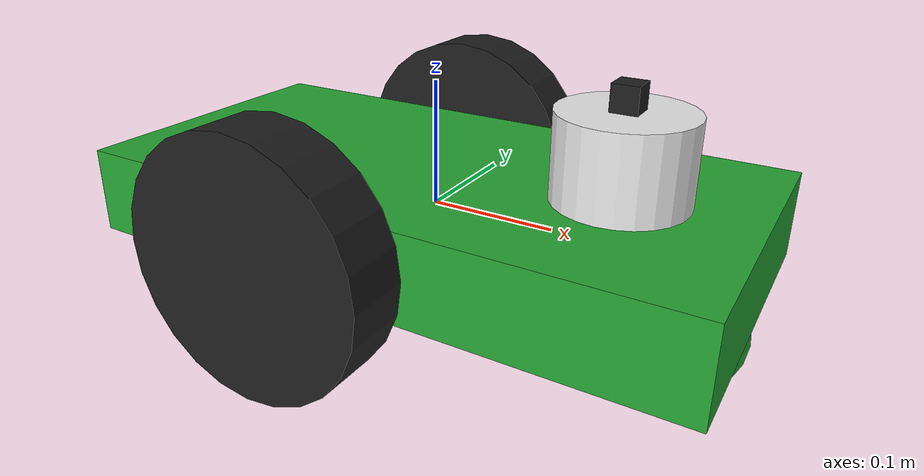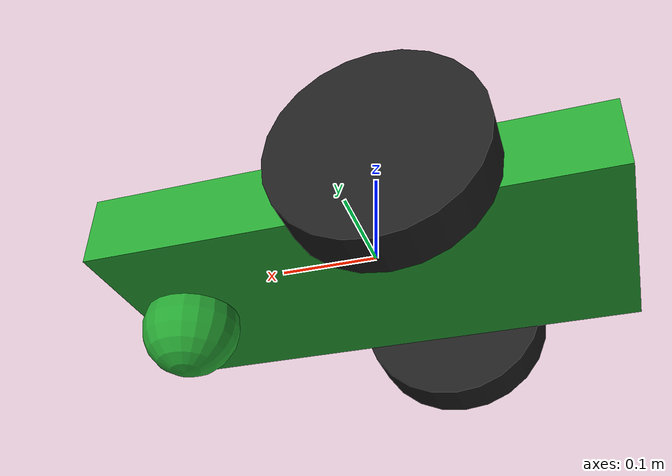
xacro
<?xml version="1.0"?>
<robot name="robot" xmlns:xacro="https://www.ros.org/wiki/xacro">
    <gazebo reference="link_chassis">
        <material>Gazebo/Green</material>
    </gazebo>
    <gazebo reference="link_left_wheel">
        <material>Gazebo/Black</material>
    </gazebo>
    <gazebo reference="link_right_wheel">
        <material>Gazebo/Black</material>
    </gazebo>

    <gazebo>
        <plugin filename="libgazebo_ros_diff_drive.so" name="differential_drive_controller">
        <legacyMode>false</legacyMode>
        <alwaysOn>true</alwaysOn>
        <updateRate>20</updateRate>
        <leftJoint>joint_left_wheel</leftJoint>
        <rightJoint>joint_right_wheel</rightJoint>
        <wheelSeparation>0.2</wheelSeparation>
        <wheelDiameter>0.2</wheelDiameter>
        <torque>0.1</torque>
        <commandTopic>cmd_vel</commandTopic>
        <odometryTopic>odom</odometryTopic>
        <odometryFrame>odom</odometryFrame>
        <robotBaseFrame>link_chassis</robotBaseFrame>
        </plugin>
    </gazebo>

    <link name="link_chassis">
        <pose>0 0 0.1 0 0 0</pose>
        <inertial>
        <mass value="4"/>
        <origin rpy="0 0 0" xyz="0 0 0.1"/>
        <inertia ixx="0.02246666667" ixy="0" ixz="0" iyy="0.08496666667" iyz="0" izz="0.10416666667"/>
        </inertial>
        <collision name="collision_chassis">
        <geometry>
            <box size="0.5 0.25 0.07"/>
        </geometry>
        </collision>
        <visual>
        <origin rpy="0 0 0" xyz="0 0 0"/>
        <geometry>
            <box size="0.5 0.25 0.07"/>
        </geometry>
        </visual>
        <collision name="caster_front_collision">
        <origin rpy=" 0 0 0" xyz="0.35 0 -0.05"/>
        <geometry>
            <sphere radius="0.05"/>
        </geometry>
        <surface>
            <friction>
            <ode>
                <mu>0</mu>
                <mu2>0</mu2>
                <slip1>1.0</slip1>
                <slip2>1.0</slip2>
            </ode>
            </friction>
        </surface>
        </collision>
        <visual name="caster_front_visual">
        <origin rpy=" 0 0 0" xyz="0.2 0 -0.05"/>
        <geometry>
            <sphere radius="0.05"/>
        </geometry>
        </visual>
    </link>

    <link name="link_right_wheel">
        <inertial>
        <mass value="0.15"/>
        <origin rpy="0 1.5707 1.5707" xyz="0 0 0"/>
        <inertia ixx="0.000406250" ixy="0" ixz="0" iyy="0.000750000" iyz="0" izz="0.000406250"/>
        </inertial>
        <collision name="link_right_wheel_collision">
        <origin rpy="0 1.5707 1.5707" xyz="0 0 0"/>
        <geometry>
            <cylinder length="0.05" radius="0.1"/>
        </geometry>
        </collision>
        <visual name="link_right_wheel_visual">
        <origin rpy="0 1.5707 1.5707" xyz="0 0 0"/>
        <geometry>
            <cylinder length="0.05" radius="0.1"/>
        </geometry>
        </visual>
    </link>

    <joint name="joint_right_wheel" type="continuous">
        <origin rpy="0 0 0" xyz="-0.05 0.15 0"/>
        <child link="link_right_wheel"/>
        <parent link="link_chassis"/>
        <axis rpy="0 0 0" xyz="0 1 0"/>
        <limit effort="10000" velocity="1000"/>
        <joint_properties damping="1.0" friction="1.0"/>
    </joint>

    <link name="link_left_wheel">
        <inertial>
        <mass value="0.15"/>
        <origin rpy="0 1.5707 1.5707" xyz="0 0 0"/>
        <inertia ixx="0.000406250" ixy="0" ixz="0" iyy="0.000750000" iyz="0" izz="0.000406250"/>
        </inertial>
        <collision name="link_left_wheel_collision">
        <origin rpy="0 1.5707 1.5707" xyz="0 0 0"/>
        <geometry>
            <cylinder length="0.05" radius="0.1"/>
        </geometry>
        </collision>
        <visual name="link_left_wheel_visual">
        <origin rpy="0 1.5707 1.5707" xyz="0 0 0"/>
        <geometry>
            <cylinder length="0.05" radius="0.1"/>
        </geometry>
        </visual>
    </link>

    <joint name="joint_left_wheel" type="continuous">
        <origin rpy="0 0 0" xyz="-0.05 -0.15 0"/>
        <child link="link_left_wheel"/>
        <parent link="link_chassis"/>
        <axis rpy="0 0 0" xyz="0 1 0"/>
        <limit effort="10000" velocity="1000"/>
        <joint_properties damping="1.0" friction="1.0"/>
    </joint>

    <link name="sensor_laser">
        <inertial>
            <origin xyz="0 0 0" rpy="0 0 0" />
            <mass value="1" />
            <inertia ixx="0.00145833333" ixy="0" ixz="0" iyy="0.00145833333" iyz="0" izz="0.00125"/>
        </inertial>

        <visual>
            <origin xyz="0 0 0" rpy="0 0 0" />
            <geometry>
            <cylinder radius="0.05" length="0.1"/>
            </geometry>
            <material name="white" />
        </visual>

        <collision>
            <origin xyz="0 0 0" rpy="0 0 0"/>
            <geometry>
            <cylinder radius="0.05" length="0.1"/>
            </geometry>
        </collision>
    </link>

    <joint name="joint_sensor_laser" type="fixed">
        <origin xyz="0.15 0 0.05" rpy="0 0 0"/>
        <parent link="link_chassis"/>
        <child link="sensor_laser"/>
    </joint>

    <gazebo reference="sensor_laser">
        <sensor type="ray" name="head_hokuyo_sensor">
        <pose>0 0 0 0 0 0</pose>
        <visualize>false</visualize>
        <update_rate>20</update_rate>
        <ray>
            <scan>
            <horizontal>
                <samples>720</samples>
                <resolution>1</resolution>
                <min_angle>-1.570796</min_angle>
                <max_angle>1.570796</max_angle>
            </horizontal>
            </scan>
            <range>
            <min>0.10</min>
            <max>10.0</max>
            <resolution>0.01</resolution>
            </range>
            <noise>
            <type>gaussian</type>
            <mean>0.0</mean>
            <stddev>0.01</stddev>
            </noise>
        </ray>
        <plugin name="gazebo_ros_head_hokuyo_controller" filename="libgazebo_ros_laser.so">
            <topicName>/m57/laser/scan</topicName>
            <frameName>sensor_laser</frameName>
        </plugin>
        </sensor>
    </gazebo>

    <link name="camera_link">
        <visual>
            <origin xyz="0 0 0" rpy="0 0 0" />
            <geometry>
            <box size="0.02 0.02 0.02"/>
            </geometry>
            <material name="black"/>
        </visual>

        <collision>
            <origin xyz="0 0 0" rpy="0 0 0"/>
            <geometry>
            <box size="0.02 0.02 0.02"/>
            </geometry>
        </collision>
    </link>

    <joint name="camera_joint" type="fixed">
        <origin xyz="0.15 0 0.11" rpy="0 0 0"/>
        <parent link="link_chassis"/>
        <child link="camera_link"/>
    </joint>

    <gazebo reference="camera_link">
        <sensor type="camera" name="camera1">
        <update_rate>30.0</update_rate>
        <camera name="head">
            <horizontal_fov>1.3962634</horizontal_fov>
            <image>
            <width>800</width>
            <height>800</height>
            <format>R8G8B8</format>
            </image>
            <clip>
            <near>0.02</near>
            <far>300</far>
            </clip>
            <noise>
            <type>gaussian</type>
            <mean>0.0</mean>
            <stddev>0.007</stddev>
            </noise>
        </camera>
        <plugin name="camera_controller" filename="libgazebo_ros_camera.so">
            <alwaysOn>true</alwaysOn>
            <updateRate>0.0</updateRate>
            <cameraName>rrbot/camera1</cameraName>
            <imageTopicName>image_raw</imageTopicName>
            <cameraInfoTopicName>camera_info</cameraInfoTopicName>
            <frameName>camera_link</frameName>
            <hackBaseline>0.07</hackBaseline>
            <distortionK1>0.0</distortionK1>
            <distortionK2>0.0</distortionK2>
            <distortionK3>0.0</distortionK3>
            <distortionT1>0.0</distortionT1>
            <distortionT2>0.0</distortionT2>
        </plugin>
        </sensor>
    </gazebo>
</robot>
